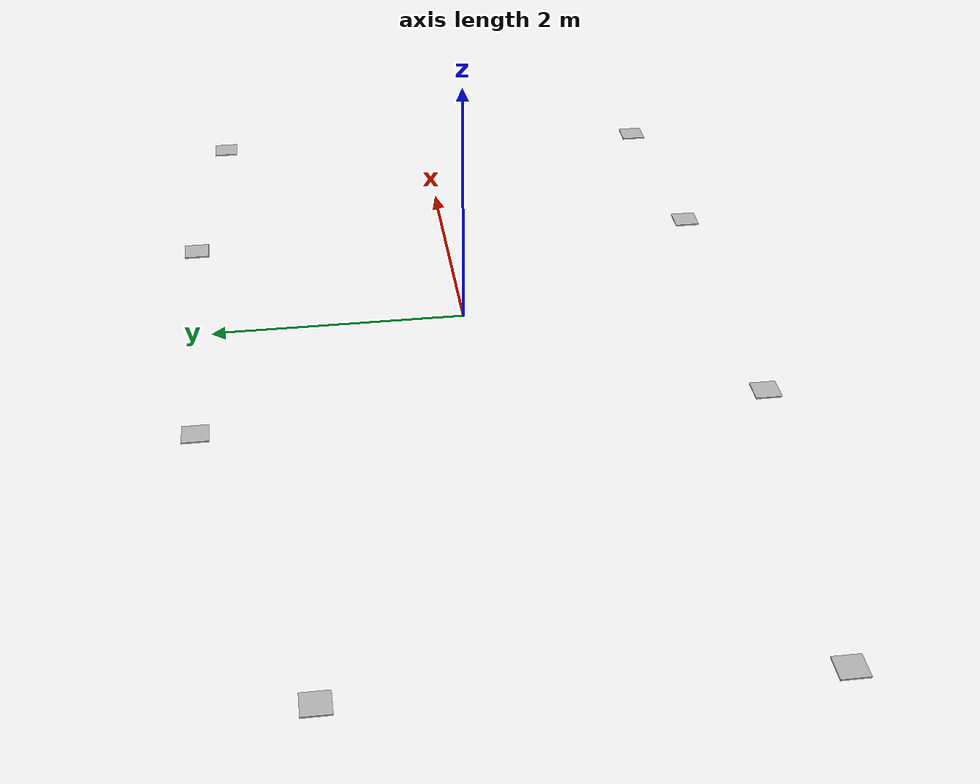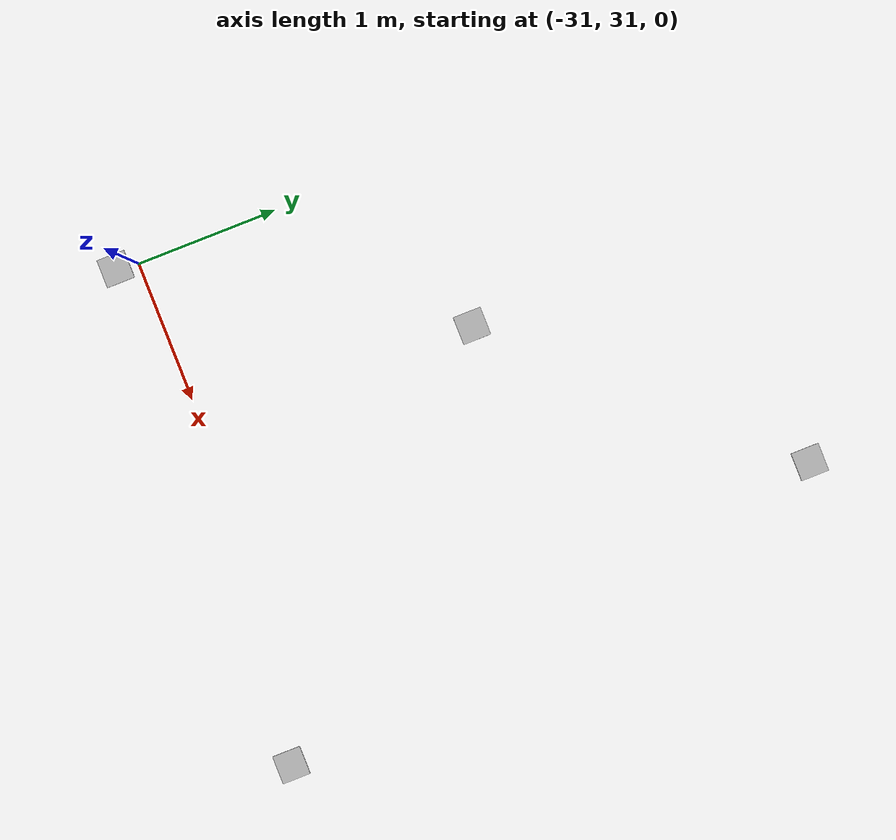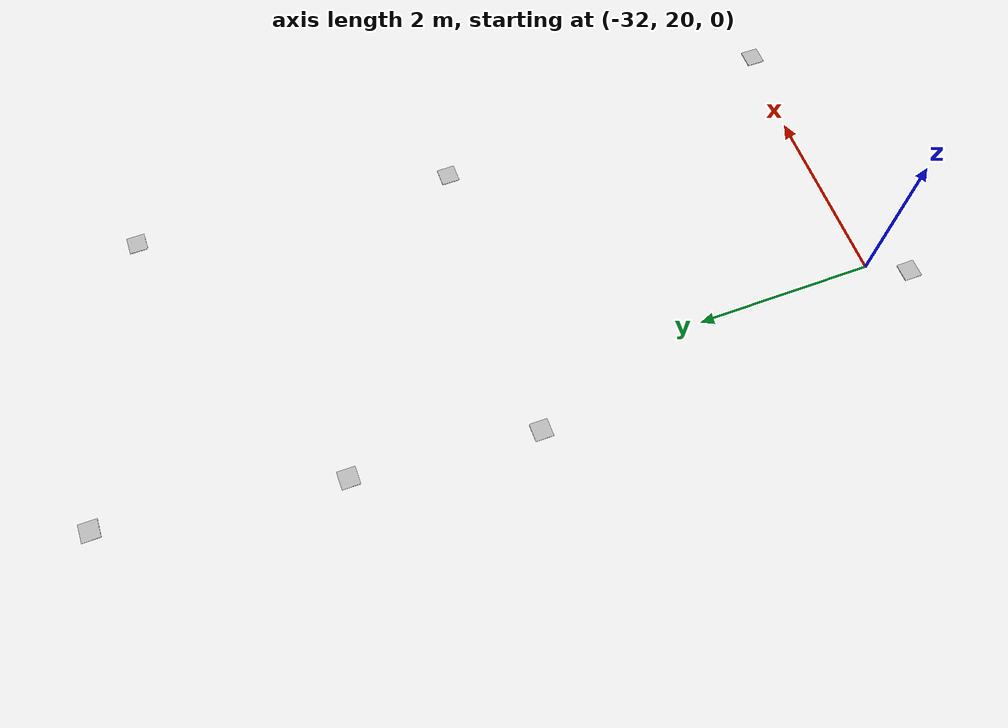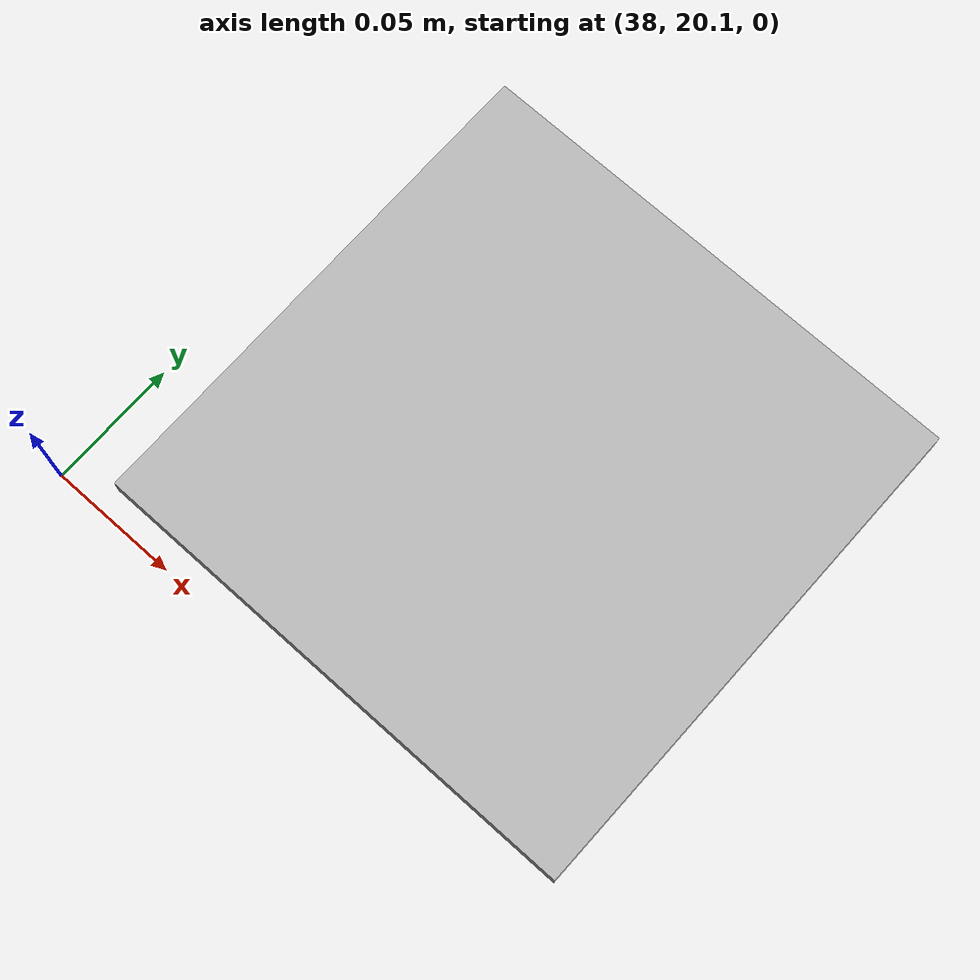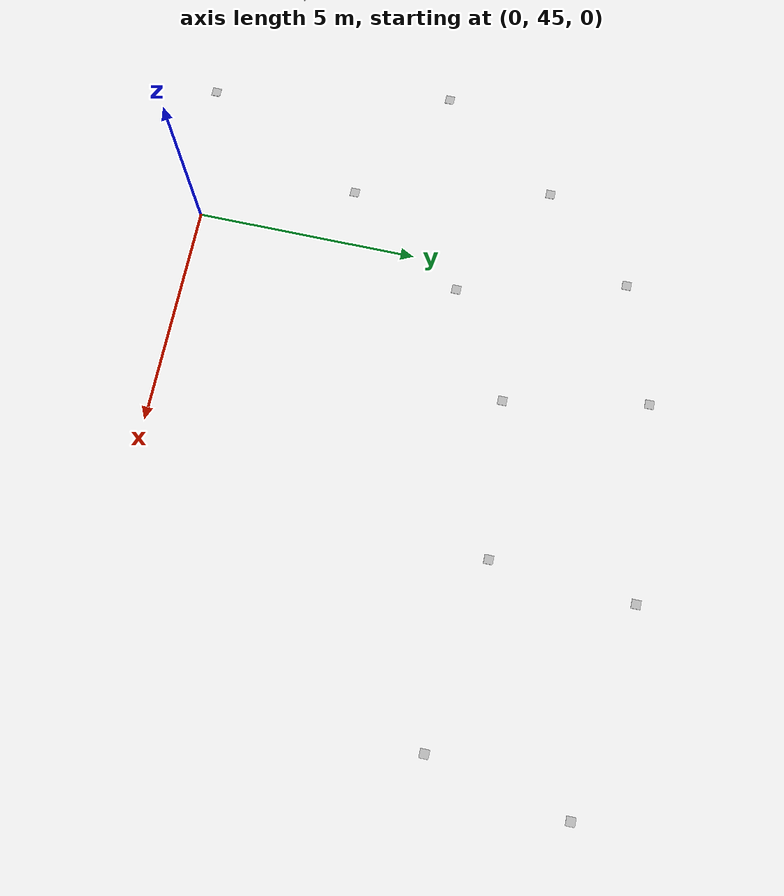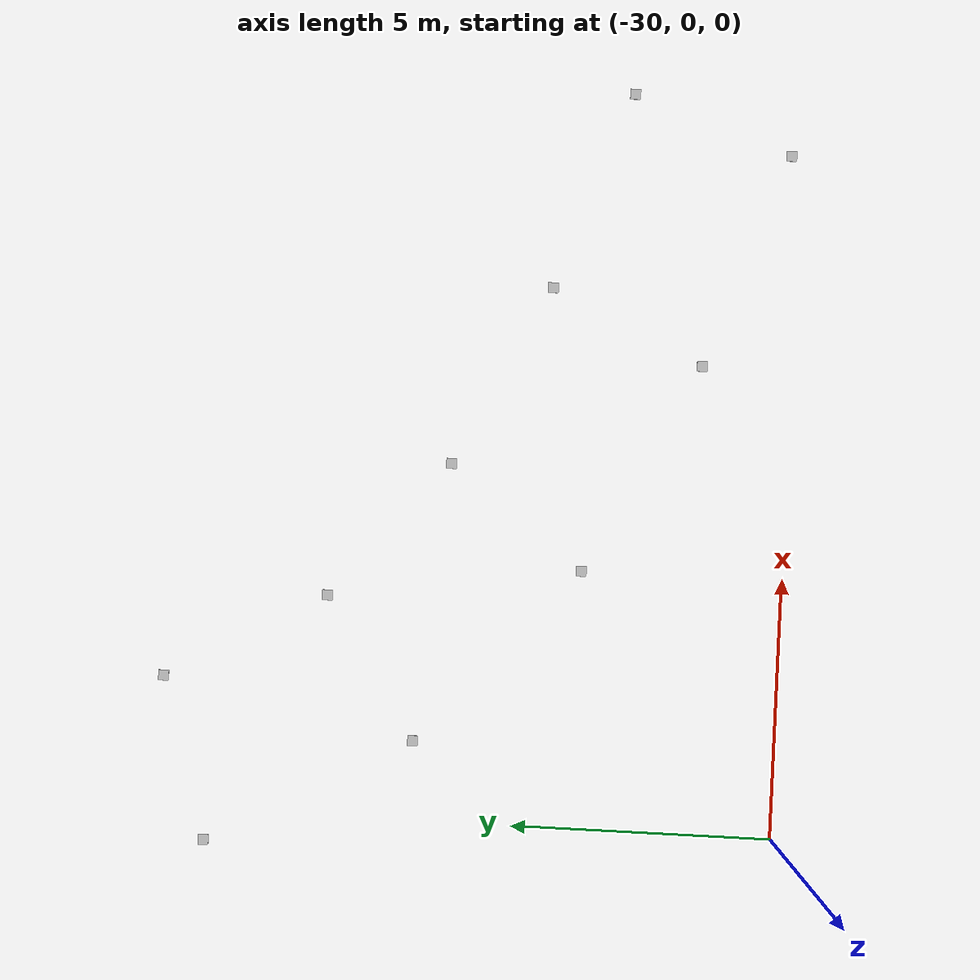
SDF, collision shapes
<?xml version='1.0' encoding='UTF-8'?>
<sdf version="1.4">
  <model name="some track">
    <include>
      <uri>model://cone_yellow</uri>
      <pose>14.95257543608247 -0.6579100340481748 0 0 0 0</pose>
      <name>cone_right</name>
    </include>
    <include>
      <uri>model://cone_yellow</uri>
      <pose>18.48657653043738 1.7990067586337692 0 0 0 0</pose>
      <name>cone_right</name>
    </include>
    <include>
      <uri>model://cone_yellow</uri>
      <pose>21.834763890107595 2.4539240666022017 0 0 0 0</pose>
      <name>cone_right</name>
    </include>
    <include>
      <uri>model://cone_yellow</uri>
      <pose>25.63030809282651 2.2949821506539774 0 0 0 0</pose>
      <name>cone_right</name>
    </include>
    <include>
      <uri>model://cone_yellow</uri>
      <pose>30.072023870175123 2.322717712171464 0 0 0 0</pose>
      <name>cone_right</name>
    </include>
    <include>
      <uri>model://cone_yellow</uri>
      <pose>34.63121758131941 3.502313912840803 0 0 0 0</pose>
      <name>cone_right</name>
    </include>
    <include>
      <uri>model://cone_yellow</uri>
      <pose>38.262841706638355 6.443411988028435 0 0 0 0</pose>
      <name>cone_right</name>
    </include>
    <include>
      <uri>model://cone_yellow</uri>
      <pose>40.19705144964473 10.764252964046154 0 0 0 0</pose>
      <name>cone_right</name>
    </include>
    <include>
      <uri>model://cone_yellow</uri>
      <pose>40.99069619346816 15.45755440902308 0 0 0 0</pose>
      <name>cone_right</name>
    </include>
    <include>
      <uri>model://cone_yellow</uri>
      <pose>41.35792175788962 19.969779811436034 0 0 0 0</pose>
      <name>cone_right</name>
    </include>
    <include>
      <uri>model://cone_yellow</uri>
      <pose>41.540022691798356 24.233881556858517 0 0 0 0</pose>
      <name>cone_right</name>
    </include>
    <include>
      <uri>model://cone_yellow</uri>
      <pose>41.367404568869695 28.43319512032617 0 0 0 0</pose>
      <name>cone_right</name>
    </include>
    <include>
      <uri>model://cone_yellow</uri>
      <pose>40.63648838703389 32.65805167595043 0 0 0 0</pose>
      <name>cone_right</name>
    </include>
    <include>
      <uri>model://cone_yellow</uri>
      <pose>39.252418301157576 36.83680796653918 0 0 0 0</pose>
      <name>cone_right</name>
    </include>
    <include>
      <uri>model://cone_yellow</uri>
      <pose>37.23966950244572 40.811932621818976 0 0 0 0</pose>
      <name>cone_right</name>
    </include>
    <include>
      <uri>model://cone_yellow</uri>
      <pose>34.62021026041728 44.44085399457191 0 0 0 0</pose>
      <name>cone_right</name>
    </include>
    <include>
      <uri>model://cone_yellow</uri>
      <pose>31.42697702425886 47.57599025654307 0 0 0 0</pose>
      <name>cone_right</name>
    </include>
    <include>
      <uri>model://cone_yellow</uri>
      <pose>27.81888562700608 50.12441087029155 0 0 0 0</pose>
      <name>cone_right</name>
    </include>
    <include>
      <uri>model://cone_yellow</uri>
      <pose>23.975883600988737 52.08373787494367 0 0 0 0</pose>
      <name>cone_right</name>
    </include>
    <include>
      <uri>model://cone_yellow</uri>
      <pose>19.996925920720354 53.522517583135354 0 0 0 0</pose>
      <name>cone_right</name>
    </include>
    <include>
      <uri>model://cone_yellow</uri>
      <pose>15.818339676378573 54.65987007266721 0 0 0 0</pose>
      <name>cone_right</name>
    </include>
    <include>
      <uri>model://cone_yellow</uri>
      <pose>11.340346913375644 55.67129394640885 0 0 0 0</pose>
      <name>cone_right</name>
    </include>
    <include>
      <uri>model://cone_yellow</uri>
      <pose>6.721673578565318 56.24912372247164 0 0 0 0</pose>
      <name>cone_right</name>
    </include>
    <include>
      <uri>model://cone_yellow</uri>
      <pose>2.318469911937771 55.81892538823297 0 0 0 0</pose>
      <name>cone_right</name>
    </include>
    <include>
      <uri>model://cone_yellow</uri>
      <pose>-4.06522879682612 50.0098050185978 0 0 0 0</pose>
      <name>cone_right</name>
    </include>
    <include>
      <uri>model://cone_yellow</uri>
      <pose>-6.041326878388196 45.96099217393879 0 0 0 0</pose>
      <name>cone_right</name>
    </include>
    <include>
      <uri>model://cone_yellow</uri>
      <pose>-8.102595983067001 42.13206373463371 0 0 0 0</pose>
      <name>cone_right</name>
    </include>
    <include>
      <uri>model://cone_yellow</uri>
      <pose>-10.704525069928586 39.10818391811828 0 0 0 0</pose>
      <name>cone_right</name>
    </include>
    <include>
      <uri>model://cone_yellow</uri>
      <pose>-13.87577514287237 37.148435240710214 0 0 0 0</pose>
      <name>cone_right</name>
    </include>
    <include>
      <uri>model://cone_yellow</uri>
      <pose>-17.32154633652152 36.52192461013406 0 0 0 0</pose>
      <name>cone_right</name>
    </include>
    <include>
      <uri>model://cone_yellow</uri>
      <pose>-21.235618345753075 36.81323422109224 0 0 0 0</pose>
      <name>cone_right</name>
    </include>
    <include>
      <uri>model://cone_yellow</uri>
      <pose>-29.770193066783737 32.96664644297503 0 0 0 0</pose>
      <name>cone_right</name>
    </include>
    <include>
      <uri>model://cone_yellow</uri>
      <pose>-32.011054331422784 28.654024199379087 0 0 0 0</pose>
      <name>cone_right</name>
    </include>
    <include>
      <uri>model://cone_yellow</uri>
      <pose>-32.55152536871871 24.06118280448019 0 0 0 0</pose>
      <name>cone_right</name>
    </include>
    <include>
      <uri>model://cone_yellow</uri>
      <pose>-32.199325671954846 19.57621197899345 0 0 0 0</pose>
      <name>cone_right</name>
    </include>
    <include>
      <uri>model://cone_yellow</uri>
      <pose>-31.61923147548352 15.193025938632468 0 0 0 0</pose>
      <name>cone_right</name>
    </include>
    <include>
      <uri>model://cone_yellow</uri>
      <pose>-30.54920894763241 10.885532702741713 0 0 0 0</pose>
      <name>cone_right</name>
    </include>
    <include>
      <uri>model://cone_yellow</uri>
      <pose>-28.45172613464904 6.960622668139553 0 0 0 0</pose>
      <name>cone_right</name>
    </include>
    <include>
      <uri>model://cone_yellow</uri>
      <pose>-25.030509243088993 3.8829014279507197 0 0 0 0</pose>
      <name>cone_right</name>
    </include>
    <include>
      <uri>model://cone_yellow</uri>
      <pose>-20.964555184019382 1.7464158865471355 0 0 0 0</pose>
      <name>cone_right</name>
    </include>
    <include>
      <uri>model://cone_yellow</uri>
      <pose>-16.816692039236194 0.2182677367521797 0 0 0 0</pose>
      <name>cone_right</name>
    </include>
    <include>
      <uri>model://cone_yellow</uri>
      <pose>-12.678971990682331 -0.8815453013210005 0 0 0 0</pose>
      <name>cone_right</name>
    </include>
    <include>
      <uri>model://cone_yellow</uri>
      <pose>-8.476748444367288 -1.5750007069957284 0 0 0 0</pose>
      <name>cone_right</name>
    </include>
    <include>
      <uri>model://cone_yellow</uri>
      <pose>-4.184698309752191 -1.8482202976875295 0 0 0 0</pose>
      <name>cone_right</name>
    </include>
    <include>
      <uri>model://cone_yellow</uri>
      <pose>2.985164835003676 -2.00323483508884 0 0 0 0</pose>
      <name>cone_right</name>
    </include>
    <include>
      <uri>model://cone_yellow</uri>
      <pose>7.125322599513883 -2.1215250569319934 0 0 0 0</pose>
      <name>cone_right</name>
    </include>
    <include>
      <uri>model://cone_yellow</uri>
      <pose>11.580920955605816 -2.00323483508884 0 0 0 0</pose>
      <name>cone_right</name>
    </include>
    <include>
      <uri>model://cone_yellow</uri>
      <pose>-0.33517597534358146 54.86314639625709 0 0 0 0</pose>
      <name>cone_right</name>
    </include>
    <include>
      <uri>model://cone_yellow</uri>
      <pose>-2.183460691642779 52.76842371778467 0 0 0 0</pose>
      <name>cone_right</name>
    </include>
    <include>
      <uri>model://cone_yellow</uri>
      <pose>-28.05431259561962 34.77674110440183 0 0 0 0</pose>
      <name>cone_right</name>
    </include>
    <include>
      <uri>model://cone_yellow</uri>
      <pose>-31.027826201702823 30.84057920857946 0 0 0 0</pose>
      <name>cone_right</name>
    </include>
    <include>
      <uri>model://cone_yellow</uri>
      <pose>-32.36483771522944 26.080818220424696 0 0 0 0</pose>
      <name>cone_right</name>
    </include>
    <include>
      <uri>model://cone_yellow</uri>
      <pose>-25.165773499062773 36.44924965980186 0 0 0 0</pose>
      <name>cone_right</name>
    </include>
    <include>
      <uri>model://cone_blue</uri>
      <pose>13.41124521897503 2.203348633362295 0 0 0 0</pose>
      <name>cone_left</name>
    </include>
    <include>
      <uri>model://cone_blue</uri>
      <pose>16.758721403516343 4.551644886025868 0 0 0 0</pose>
      <name>cone_left</name>
    </include>
    <include>
      <uri>model://cone_blue</uri>
      <pose>21.445062831206222 5.680475334549319 0 0 0 0</pose>
      <name>cone_left</name>
    </include>
    <include>
      <uri>model://cone_blue</uri>
      <pose>25.83616612842608 5.538455978077144 0 0 0 0</pose>
      <name>cone_left</name>
    </include>
    <include>
      <uri>model://cone_blue</uri>
      <pose>29.902949393817465 5.568316858930715 0 0 0 0</pose>
      <name>cone_left</name>
    </include>
    <include>
      <uri>model://cone_blue</uri>
      <pose>33.54041519875454 6.563792340364147 0 0 0 0</pose>
      <name>cone_left</name>
    </include>
    <include>
      <uri>model://cone_blue</uri>
      <pose>35.84545896174971 8.615682842391358 0 0 0 0</pose>
      <name>cone_left</name>
    </include>
    <include>
      <uri>model://cone_blue</uri>
      <pose>37.11111369415889 11.783805890218709 0 0 0 0</pose>
      <name>cone_left</name>
    </include>
    <include>
      <uri>model://cone_blue</uri>
      <pose>37.76685888976818 15.869103967730696 0 0 0 0</pose>
      <name>cone_left</name>
    </include>
    <include>
      <uri>model://cone_blue</uri>
      <pose>38.116786582846295 20.209660567431328 0 0 0 0</pose>
      <name>cone_left</name>
    </include>
    <include>
      <uri>model://cone_blue</uri>
      <pose>38.29126663093464 24.323792941017235 0 0 0 0</pose>
      <name>cone_left</name>
    </include>
    <include>
      <uri>model://cone_blue</uri>
      <pose>38.125231729481776 28.207772673495196 0 0 0 0</pose>
      <name>cone_left</name>
    </include>
    <include>
      <uri>model://cone_blue</uri>
      <pose>37.45790463919292 31.980478537491393 0 0 0 0</pose>
      <name>cone_left</name>
    </include>
    <include>
      <uri>model://cone_blue</uri>
      <pose>36.209224927370116 35.69598629347364 0 0 0 0</pose>
      <name>cone_left</name>
    </include>
    <include>
      <uri>model://cone_blue</uri>
      <pose>34.40086848687058 39.229621402756955 0 0 0 0</pose>
      <name>cone_left</name>
    </include>
    <include>
      <uri>model://cone_blue</uri>
      <pose>32.069519947553275 42.42678375551327 0 0 0 0</pose>
      <name>cone_left</name>
    </include>
    <include>
      <uri>model://cone_blue</uri>
      <pose>29.258306680664738 45.155376916743556 0 0 0 0</pose>
      <name>cone_left</name>
    </include>
    <include>
      <uri>model://cone_blue</uri>
      <pose>26.051752086777572 47.39682236558644 0 0 0 0</pose>
      <name>cone_left</name>
    </include>
    <include>
      <uri>model://cone_blue</uri>
      <pose>22.605602509576833 49.13673435772164 0 0 0 0</pose>
      <name>cone_left</name>
    </include>
    <include>
      <uri>model://cone_blue</uri>
      <pose>18.97691011651332 50.43673279492218 0 0 0 0</pose>
      <name>cone_left</name>
    </include>
    <include>
      <uri>model://cone_blue</uri>
      <pose>15.008091539071641 51.51249053470382 0 0 0 0</pose>
      <name>cone_left</name>
    </include>
    <include>
      <uri>model://cone_blue</uri>
      <pose>10.666648935111954 52.491886606340046 0 0 0 0</pose>
      <name>cone_left</name>
    </include>
    <include>
      <uri>model://cone_blue</uri>
      <pose>6.444939981221819 53.01092692238346 0 0 0 0</pose>
      <name>cone_left</name>
    </include>
    <include>
      <uri>model://cone_blue</uri>
      <pose>2.917333094836475 52.62457680234438 0 0 0 0</pose>
      <name>cone_left</name>
    </include>
    <include>
      <uri>model://cone_blue</uri>
      <pose>0.5677590221931852 51.10669491817247 0 0 0 0</pose>
      <name>cone_left</name>
    </include>
    <include>
      <uri>model://cone_blue</uri>
      <pose>-1.2774580065144931 48.339226070841875 0 0 0 0</pose>
      <name>cone_left</name>
    </include>
    <include>
      <uri>model://cone_blue</uri>
      <pose>-3.1022441934766025 44.57380330026194 0 0 0 0</pose>
      <name>cone_left</name>
    </include>
    <include>
      <uri>model://cone_blue</uri>
      <pose>-5.291248142436139 40.50147386621793 0 0 0 0</pose>
      <name>cone_left</name>
    </include>
    <include>
      <uri>model://cone_blue</uri>
      <pose>-8.38370512758215 36.83303671514282 0 0 0 0</pose>
      <name>cone_left</name>
    </include>
    <include>
      <uri>model://cone_blue</uri>
      <pose>-12.37339725054752 34.26653297507845 0 0 0 0</pose>
      <name>cone_left</name>
    </include>
    <include>
      <uri>model://cone_blue</uri>
      <pose>-17.012926651176777 33.28661104112445 0 0 0 0</pose>
      <name>cone_left</name>
    </include>
    <include>
      <uri>model://cone_blue</uri>
      <pose>-21.495027851718618 33.57360357729737 0 0 0 0</pose>
      <name>cone_left</name>
    </include>
    <include>
      <uri>model://cone_blue</uri>
      <pose>-24.87171678128747 32.98702771768048 0 0 0 0</pose>
      <name>cone_left</name>
    </include>
    <include>
      <uri>model://cone_blue</uri>
      <pose>-27.4279521341015 30.713558026319383 0 0 0 0</pose>
      <name>cone_left</name>
    </include>
    <include>
      <uri>model://cone_blue</uri>
      <pose>-28.97313175111542 27.49924006541351 0 0 0 0</pose>
      <name>cone_left</name>
    </include>
    <include>
      <uri>model://cone_blue</uri>
      <pose>-29.303645664216294 23.94380552779802 0 0 0 0</pose>
      <name>cone_left</name>
    </include>
    <include>
      <uri>model://cone_blue</uri>
      <pose>-28.966899804200246 19.913736806926003 0 0 0 0</pose>
      <name>cone_left</name>
    </include>
    <include>
      <uri>model://cone_blue</uri>
      <pose>-28.4035328854216 15.66396391530643 0 0 0 0</pose>
      <name>cone_left</name>
    </include>
    <include>
      <uri>model://cone_blue</uri>
      <pose>-27.43464232963371 11.813958672891275 0 0 0 0</pose>
      <name>cone_left</name>
    </include>
    <include>
      <uri>model://cone_blue</uri>
      <pose>-25.73487641978031 8.744222294405972 0 0 0 0</pose>
      <name>cone_left</name>
    </include>
    <include>
      <uri>model://cone_blue</uri>
      <pose>-23.08173445195831 6.483819883699298 0 0 0 0</pose>
      <name>cone_left</name>
    </include>
    <include>
      <uri>model://cone_blue</uri>
      <pose>-19.591980859392073 4.692352023562648 0 0 0 0</pose>
      <name>cone_left</name>
    </include>
    <include>
      <uri>model://cone_blue</uri>
      <pose>-15.767822449286498 3.2943647090985904 0 0 0 0</pose>
      <name>cone_left</name>
    </include>
    <include>
      <uri>model://cone_blue</uri>
      <pose>-11.921794942994836 2.2790215653115102 0 0 0 0</pose>
      <name>cone_left</name>
    </include>
    <include>
      <uri>model://cone_blue</uri>
      <pose>-8.028035774770618 1.6438743977797627 0 0 0 0</pose>
      <name>cone_left</name>
    </include>
    <include>
      <uri>model://cone_blue</uri>
      <pose>-4.067671981568834 1.3996720709897208 0 0 0 0</pose>
      <name>cone_left</name>
    </include>
    <include>
      <uri>model://cone_blue</uri>
      <pose>10.95003977244236 1.3877515244147602 0 0 0 0</pose>
      <name>cone_left</name>
    </include>
    <include>
      <uri>model://cone_blue</uri>
      <pose>7.401333117147896 1.545471820205627 0 0 0 0</pose>
      <name>cone_left</name>
    </include>
    <include>
      <uri>model://cone_blue</uri>
      <pose>3.1428851307945394 1.8609124117873534 0 0 0 0</pose>
      <name>cone_left</name>
    </include>
    <include>
      <uri>model://cone_orange_big</uri>
      <pose>-1.3 2.125 0 0 0 0</pose>
      <name>cone_orange_big</name>
    </include>
    <include>
      <uri>model://cone_orange_big</uri>
      <pose>-1.3 -2.125 0 0 0 0</pose>
      <name>cone_orange_big</name>
    </include>
    <include>
      <uri>model://cone_orange_big</uri>
      <pose>1.3 2.125 0 0 0 0</pose>
      <name>cone_orange_big</name>
    </include>
    <include>
      <uri>model://cone_orange_big</uri>
      <pose>1.3 -2.125 0 0 0 0</pose>
      <name>cone_orange_big</name>
    </include>
  </model>
</sdf>

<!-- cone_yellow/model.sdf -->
<sdf version='1.4'>
  <model name="cone_yellow">
    <link name="link">
    <collision name="collision"><geometry><box><size> 0.2 0.2 0.01</size>
             </box></geometry></collision>
      <visual name="visual">
        <geometry>
          <mesh>
            <uri>model://YellowCone.dae</uri>
            <scale>1 1 1</scale>
          </mesh>
        </geometry>
        <material>
            <script>
              <uri>model://cone_yellow/materials/scripts</uri>
              <uri>model://cone_yellow/materials/textures</uri>
              <name>cone_yellow/Image</name>
            </script>
        </material>
      </visual>
    </link>
  </model>
</sdf>

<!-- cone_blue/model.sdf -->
<sdf version='1.4'>
  <model name="cone_blue">
    <link name="link">
    <collision name="collision"><geometry><box><size> 0.2 0.2 0.01</size>
             </box></geometry></collision>
      <visual name="visual">
        <geometry>
          <mesh>
            <uri>model://BlueCone.dae</uri>
            <scale>1 1 1</scale>
          </mesh>
        </geometry>
        <material>
            <script>
              <uri>model://cone_blue/materials/scripts</uri>
              <uri>model://cone_blue/materials/textures</uri>
              <name>cone_blue/Image</name>
            </script>
        </material>
      </visual>
    </link>
  </model>
</sdf>

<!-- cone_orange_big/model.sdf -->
<sdf version='1.4'>
  <model name="cone_orange_big">
    <link name="link">
    <collision name="collision"><geometry><box><size> 0.2 0.2 0.01</size>
             </box></geometry></collision>
      <visual name="visual">
        <geometry>
          <mesh>
            <uri>model://BigOrangeCone.dae</uri>
            <scale>1 1 1</scale>
          </mesh>
        </geometry>
        <material>
            <script>
              <uri>model://cone_orange_big/materials/scripts</uri>
              <uri>model://cone_orange_big/materials/textures</uri>
              <name>cone_orange_big/Image</name>
            </script>
        </material>
      </visual>
    </link>
  </model>
</sdf>
